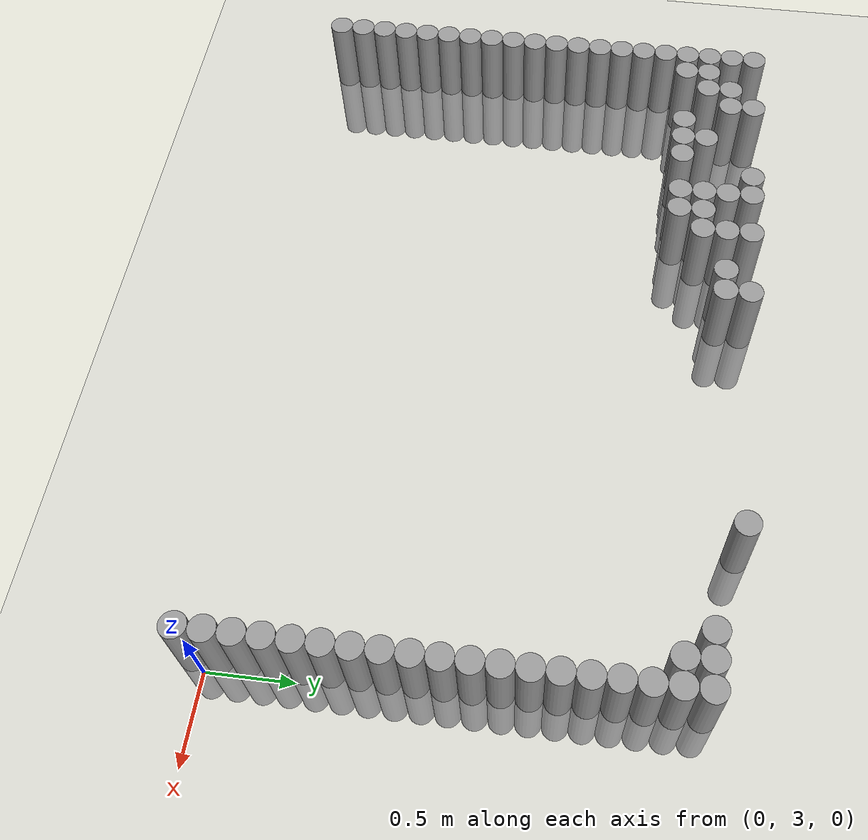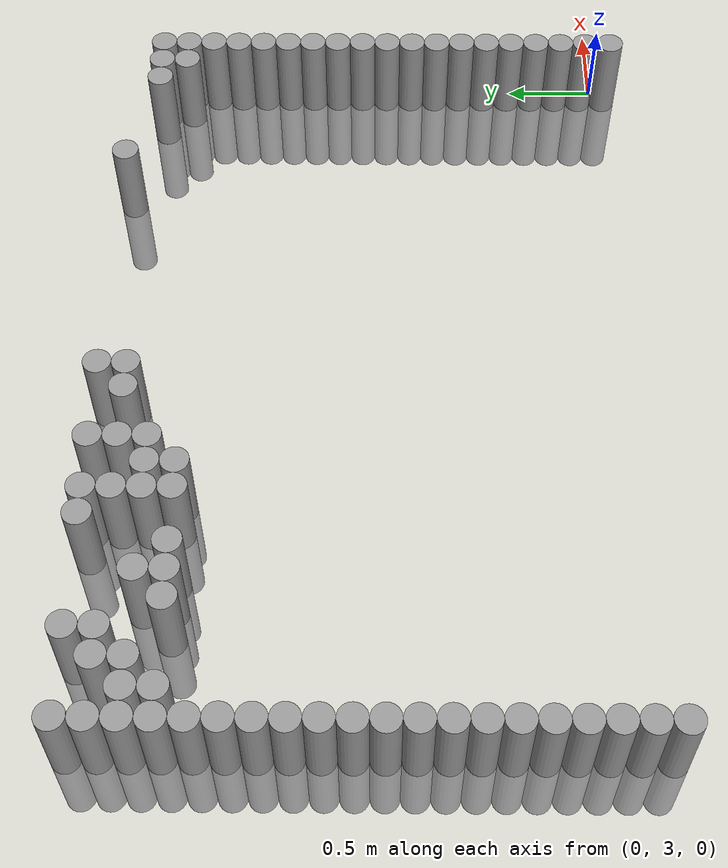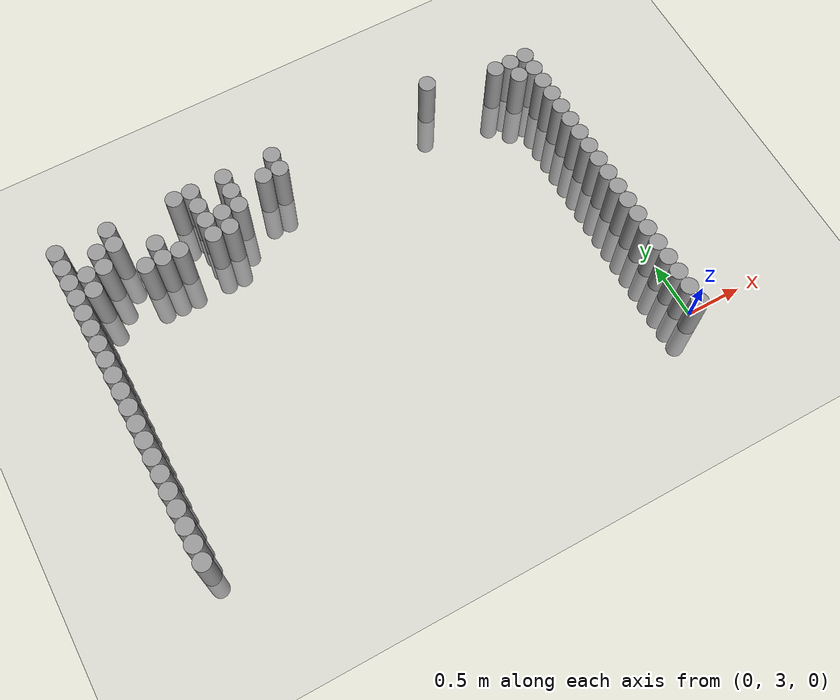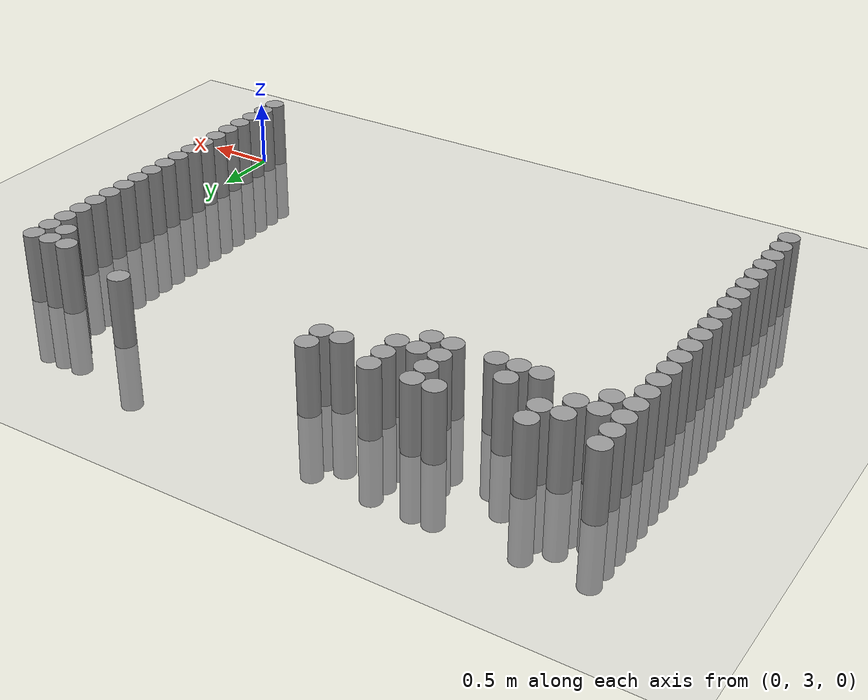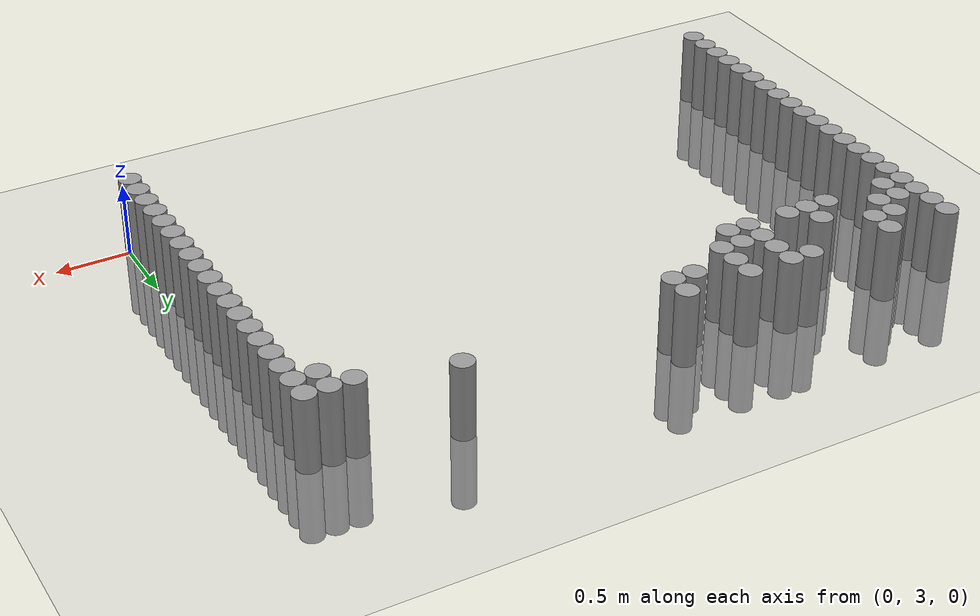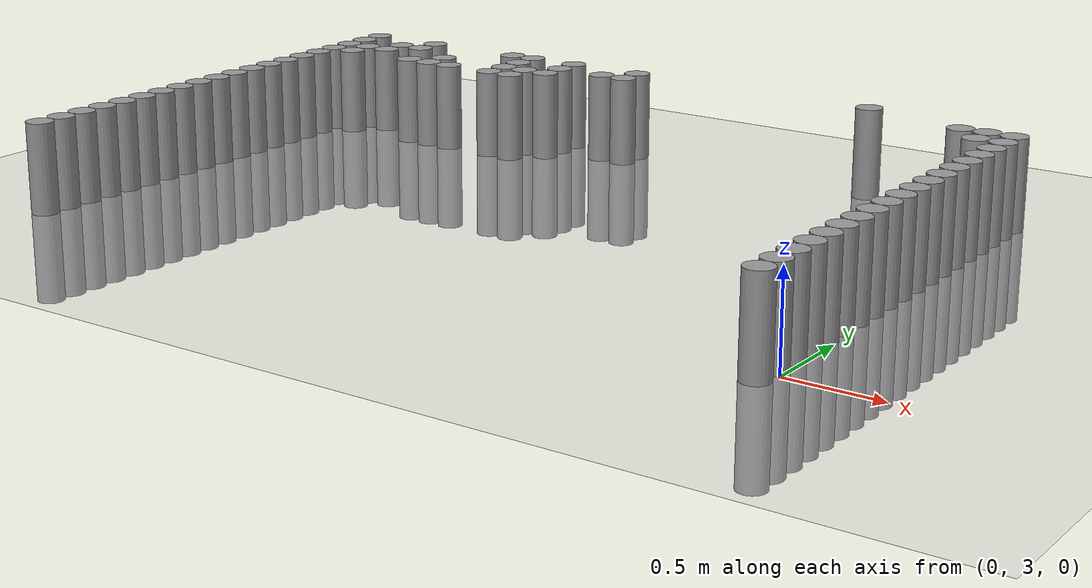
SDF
<sdf version="1.6">
 <world name="default">
  <model name="ground_plane">
   <static>1</static>
   <link name="link">
    <collision name="collision">
     <geometry><plane><normal>0 0 1</normal><size>100 100</size></plane></geometry>
     <surface><friction><ode><mu>100</mu><mu2>50</mu2></ode></friction></surface>
    </collision>
    <visual name="visual">
     <cast_shadows>0</cast_shadows>
     <geometry><plane><normal>0 0 1</normal><size>100 100</size></plane></geometry>
     <material>
      <script><uri>file://media/materials/scripts/gazebo.material</uri><name>Gazebo/Grey</name></script>
     </material>
    </visual>
   </link>
  </model>
  <model name="unit_cylinder_66">
   <pose>-0.075000 2.925000 0.000000 0.000000 0.000000 0.000000</pose>
   <link name="link">
    <inertial>
     <mass>1</mass>
     <inertia><ixx>0.145833</ixx><ixy>0</ixy><ixz>0</ixz><iyy>0.145833</iyy><iyz>0</iyz><izz>0.125</izz></inertia>
    </inertial>
    <collision name="collision">
     <geometry><cylinder><radius>0.075000</radius><length>1</length></cylinder></geometry>
    </collision>
    <visual name="visual">
     <geometry><cylinder><radius>0.075000</radius><length>1</length></cylinder></geometry>
     <material>
      <script><name>Gazebo/Grey</name><uri>file://media/materials/scripts/gazebo.material</uri></script>
     </material>
    </visual>
   </link>
  </model>
  <model name="unit_cylinder_67">
   <pose>-4.425000 2.925000 0.000000 0.000000 0.000000 0.000000</pose>
   <link name="link">
    <inertial>
     <mass>1</mass>
     <inertia><ixx>0.145833</ixx><ixy>0</ixy><ixz>0</ixz><iyy>0.145833</iyy><iyz>0</iyz><izz>0.125</izz></inertia>
    </inertial>
    <collision name="collision">
     <geometry><cylinder><radius>0.075000</radius><length>1</length></cylinder></geometry>
    </collision>
    <visual name="visual">
     <geometry><cylinder><radius>0.075000</radius><length>1</length></cylinder></geometry>
     <material>
      <script><name>Gazebo/Grey</name><uri>file://media/materials/scripts/gazebo.material</uri></script>
     </material>
    </visual>
   </link>
  </model>
  <model name="unit_cylinder_68">
   <pose>-0.075000 3.075000 0.000000 0.000000 0.000000 0.000000</pose>
   <link name="link">
    <inertial>
     <mass>1</mass>
     <inertia><ixx>0.145833</ixx><ixy>0</ixy><ixz>0</ixz><iyy>0.145833</iyy><iyz>0</iyz><izz>0.125</izz></inertia>
    </inertial>
    <collision name="collision">
     <geometry><cylinder><radius>0.075000</radius><length>1</length></cylinder></geometry>
    </collision>
    <visual name="visual">
     <geometry><cylinder><radius>0.075000</radius><length>1</length></cylinder></geometry>
     <material>
      <script><name>Gazebo/Grey</name><uri>file://media/materials/scripts/gazebo.material</uri></script>
     </material>
    </visual>
   </link>
  </model>
  <model name="unit_cylinder_69">
   <pose>-4.425000 3.075000 0.000000 0.000000 0.000000 0.000000</pose>
   <link name="link">
    <inertial>
     <mass>1</mass>
     <inertia><ixx>0.145833</ixx><ixy>0</ixy><ixz>0</ixz><iyy>0.145833</iyy><iyz>0</iyz><izz>0.125</izz></inertia>
    </inertial>
    <collision name="collision">
     <geometry><cylinder><radius>0.075000</radius><length>1</length></cylinder></geometry>
    </collision>
    <visual name="visual">
     <geometry><cylinder><radius>0.075000</radius><length>1</length></cylinder></geometry>
     <material>
      <script><name>Gazebo/Grey</name><uri>file://media/materials/scripts/gazebo.material</uri></script>
     </material>
    </visual>
   </link>
  </model>
  <model name="unit_cylinder_70">
   <pose>-0.075000 3.225000 0.000000 0.000000 0.000000 0.000000</pose>
   <link name="link">
    <inertial>
     <mass>1</mass>
     <inertia><ixx>0.145833</ixx><ixy>0</ixy><ixz>0</ixz><iyy>0.145833</iyy><iyz>0</iyz><izz>0.125</izz></inertia>
    </inertial>
    <collision name="collision">
     <geometry><cylinder><radius>0.075000</radius><length>1</length></cylinder></geometry>
    </collision>
    <visual name="visual">
     <geometry><cylinder><radius>0.075000</radius><length>1</length></cylinder></geometry>
     <material>
      <script><name>Gazebo/Grey</name><uri>file://media/materials/scripts/gazebo.material</uri></script>
     </material>
    </visual>
   </link>
  </model>
  <model name="unit_cylinder_71">
   <pose>-4.425000 3.225000 0.000000 0.000000 0.000000 0.000000</pose>
   <link name="link">
    <inertial>
     <mass>1</mass>
     <inertia><ixx>0.145833</ixx><ixy>0</ixy><ixz>0</ixz><iyy>0.145833</iyy><iyz>0</iyz><izz>0.125</izz></inertia>
    </inertial>
    <collision name="collision">
     <geometry><cylinder><radius>0.075000</radius><length>1</length></cylinder></geometry>
    </collision>
    <visual name="visual">
     <geometry><cylinder><radius>0.075000</radius><length>1</length></cylinder></geometry>
     <material>
      <script><name>Gazebo/Grey</name><uri>file://media/materials/scripts/gazebo.material</uri></script>
     </material>
    </visual>
   </link>
  </model>
  <model name="unit_cylinder_72">
   <pose>-0.075000 3.375000 0.000000 0.000000 0.000000 0.000000</pose>
   <link name="link">
    <inertial>
     <mass>1</mass>
     <inertia><ixx>0.145833</ixx><ixy>0</ixy><ixz>0</ixz><iyy>0.145833</iyy><iyz>0</iyz><izz>0.125</izz></inertia>
    </inertial>
    <collision name="collision">
     <geometry><cylinder><radius>0.075000</radius><length>1</length></cylinder></geometry>
    </collision>
    <visual name="visual">
     <geometry><cylinder><radius>0.075000</radius><length>1</length></cylinder></geometry>
     <material>
      <script><name>Gazebo/Grey</name><uri>file://media/materials/scripts/gazebo.material</uri></script>
     </material>
    </visual>
   </link>
  </model>
  <model name="unit_cylinder_73">
   <pose>-4.425000 3.375000 0.000000 0.000000 0.000000 0.000000</pose>
   <link name="link">
    <inertial>
     <mass>1</mass>
     <inertia><ixx>0.145833</ixx><ixy>0</ixy><ixz>0</ixz><iyy>0.145833</iyy><iyz>0</iyz><izz>0.125</izz></inertia>
    </inertial>
    <collision name="collision">
     <geometry><cylinder><radius>0.075000</radius><length>1</length></cylinder></geometry>
    </collision>
    <visual name="visual">
     <geometry><cylinder><radius>0.075000</radius><length>1</length></cylinder></geometry>
     <material>
      <script><name>Gazebo/Grey</name><uri>file://media/materials/scripts/gazebo.material</uri></script>
     </material>
    </visual>
   </link>
  </model>
  <model name="unit_cylinder_74">
   <pose>-0.075000 3.525000 0.000000 0.000000 0.000000 0.000000</pose>
   <link name="link">
    <inertial>
     <mass>1</mass>
     <inertia><ixx>0.145833</ixx><ixy>0</ixy><ixz>0</ixz><iyy>0.145833</iyy><iyz>0</iyz><izz>0.125</izz></inertia>
    </inertial>
    <collision name="collision">
     <geometry><cylinder><radius>0.075000</radius><length>1</length></cylinder></geometry>
    </collision>
    <visual name="visual">
     <geometry><cylinder><radius>0.075000</radius><length>1</length></cylinder></geometry>
     <material>
      <script><name>Gazebo/Grey</name><uri>file://media/materials/scripts/gazebo.material</uri></script>
     </material>
    </visual>
   </link>
  </model>
  <model name="unit_cylinder_75">
   <pose>-4.425000 3.525000 0.000000 0.000000 0.000000 0.000000</pose>
   <link name="link">
    <inertial>
     <mass>1</mass>
     <inertia><ixx>0.145833</ixx><ixy>0</ixy><ixz>0</ixz><iyy>0.145833</iyy><iyz>0</iyz><izz>0.125</izz></inertia>
    </inertial>
    <collision name="collision">
     <geometry><cylinder><radius>0.075000</radius><length>1</length></cylinder></geometry>
    </collision>
    <visual name="visual">
     <geometry><cylinder><radius>0.075000</radius><length>1</length></cylinder></geometry>
     <material>
      <script><name>Gazebo/Grey</name><uri>file://media/materials/scripts/gazebo.material</uri></script>
     </material>
    </visual>
   </link>
  </model>
  <model name="unit_cylinder_76">
   <pose>-0.075000 3.675000 0.000000 0.000000 0.000000 0.000000</pose>
   <link name="link">
    <inertial>
     <mass>1</mass>
     <inertia><ixx>0.145833</ixx><ixy>0</ixy><ixz>0</ixz><iyy>0.145833</iyy><iyz>0</iyz><izz>0.125</izz></inertia>
    </inertial>
    <collision name="collision">
     <geometry><cylinder><radius>0.075000</radius><length>1</length></cylinder></geometry>
    </collision>
    <visual name="visual">
     <geometry><cylinder><radius>0.075000</radius><length>1</length></cylinder></geometry>
     <material>
      <script><name>Gazebo/Grey</name><uri>file://media/materials/scripts/gazebo.material</uri></script>
     </material>
    </visual>
   </link>
  </model>
  <model name="unit_cylinder_77">
   <pose>-4.425000 3.675000 0.000000 0.000000 0.000000 0.000000</pose>
   <link name="link">
    <inertial>
     <mass>1</mass>
     <inertia><ixx>0.145833</ixx><ixy>0</ixy><ixz>0</ixz><iyy>0.145833</iyy><iyz>0</iyz><izz>0.125</izz></inertia>
    </inertial>
    <collision name="collision">
     <geometry><cylinder><radius>0.075000</radius><length>1</length></cylinder></geometry>
    </collision>
    <visual name="visual">
     <geometry><cylinder><radius>0.075000</radius><length>1</length></cylinder></geometry>
     <material>
      <script><name>Gazebo/Grey</name><uri>file://media/materials/scripts/gazebo.material</uri></script>
     </material>
    </visual>
   </link>
  </model>
  <model name="unit_cylinder_78">
   <pose>-0.075000 3.825000 0.000000 0.000000 0.000000 0.000000</pose>
   <link name="link">
    <inertial>
     <mass>1</mass>
     <inertia><ixx>0.145833</ixx><ixy>0</ixy><ixz>0</ixz><iyy>0.145833</iyy><iyz>0</iyz><izz>0.125</izz></inertia>
    </inertial>
    <collision name="collision">
     <geometry><cylinder><radius>0.075000</radius><length>1</length></cylinder></geometry>
    </collision>
    <visual name="visual">
     <geometry><cylinder><radius>0.075000</radius><length>1</length></cylinder></geometry>
     <material>
      <script><name>Gazebo/Grey</name><uri>file://media/materials/scripts/gazebo.material</uri></script>
     </material>
    </visual>
   </link>
  </model>
  <model name="unit_cylinder_79">
   <pose>-4.425000 3.825000 0.000000 0.000000 0.000000 0.000000</pose>
   <link name="link">
    <inertial>
     <mass>1</mass>
     <inertia><ixx>0.145833</ixx><ixy>0</ixy><ixz>0</ixz><iyy>0.145833</iyy><iyz>0</iyz><izz>0.125</izz></inertia>
    </inertial>
    <collision name="collision">
     <geometry><cylinder><radius>0.075000</radius><length>1</length></cylinder></geometry>
    </collision>
    <visual name="visual">
     <geometry><cylinder><radius>0.075000</radius><length>1</length></cylinder></geometry>
     <material>
      <script><name>Gazebo/Grey</name><uri>file://media/materials/scripts/gazebo.material</uri></script>
     </material>
    </visual>
   </link>
  </model>
  <model name="unit_cylinder_80">
   <pose>-0.075000 3.975000 0.000000 0.000000 0.000000 0.000000</pose>
   <link name="link">
    <inertial>
     <mass>1</mass>
     <inertia><ixx>0.145833</ixx><ixy>0</ixy><ixz>0</ixz><iyy>0.145833</iyy><iyz>0</iyz><izz>0.125</izz></inertia>
    </inertial>
    <collision name="collision">
     <geometry><cylinder><radius>0.075000</radius><length>1</length></cylinder></geometry>
    </collision>
    <visual name="visual">
     <geometry><cylinder><radius>0.075000</radius><length>1</length></cylinder></geometry>
     <material>
      <script><name>Gazebo/Grey</name><uri>file://media/materials/scripts/gazebo.material</uri></script>
     </material>
    </visual>
   </link>
  </model>
  <model name="unit_cylinder_81">
   <pose>-4.425000 3.975000 0.000000 0.000000 0.000000 0.000000</pose>
   <link name="link">
    <inertial>
     <mass>1</mass>
     <inertia><ixx>0.145833</ixx><ixy>0</ixy><ixz>0</ixz><iyy>0.145833</iyy><iyz>0</iyz><izz>0.125</izz></inertia>
    </inertial>
    <collision name="collision">
     <geometry><cylinder><radius>0.075000</radius><length>1</length></cylinder></geometry>
    </collision>
    <visual name="visual">
     <geometry><cylinder><radius>0.075000</radius><length>1</length></cylinder></geometry>
     <material>
      <script><name>Gazebo/Grey</name><uri>file://media/materials/scripts/gazebo.material</uri></script>
     </material>
    </visual>
   </link>
  </model>
  <model name="unit_cylinder_82">
   <pose>-0.075000 4.125000 0.000000 0.000000 0.000000 0.000000</pose>
   <link name="link">
    <inertial>
     <mass>1</mass>
     <inertia><ixx>0.145833</ixx><ixy>0</ixy><ixz>0</ixz><iyy>0.145833</iyy><iyz>0</iyz><izz>0.125</izz></inertia>
    </inertial>
    <collision name="collision">
     <geometry><cylinder><radius>0.075000</radius><length>1</length></cylinder></geometry>
    </collision>
    <visual name="visual">
     <geometry><cylinder><radius>0.075000</radius><length>1</length></cylinder></geometry>
     <material>
      <script><name>Gazebo/Grey</name><uri>file://media/materials/scripts/gazebo.material</uri></script>
     </material>
    </visual>
   </link>
  </model>
  <model name="unit_cylinder_83">
   <pose>-4.425000 4.125000 0.000000 0.000000 0.000000 0.000000</pose>
   <link name="link">
    <inertial>
     <mass>1</mass>
     <inertia><ixx>0.145833</ixx><ixy>0</ixy><ixz>0</ixz><iyy>0.145833</iyy><iyz>0</iyz><izz>0.125</izz></inertia>
    </inertial>
    <collision name="collision">
     <geometry><cylinder><radius>0.075000</radius><length>1</length></cylinder></geometry>
    </collision>
    <visual name="visual">
     <geometry><cylinder><radius>0.075000</radius><length>1</length></cylinder></geometry>
     <material>
      <script><name>Gazebo/Grey</name><uri>file://media/materials/scripts/gazebo.material</uri></script>
     </material>
    </visual>
   </link>
  </model>
  <model name="unit_cylinder_84">
   <pose>-0.075000 4.275000 0.000000 0.000000 0.000000 0.000000</pose>
   <link name="link">
    <inertial>
     <mass>1</mass>
     <inertia><ixx>0.145833</ixx><ixy>0</ixy><ixz>0</ixz><iyy>0.145833</iyy><iyz>0</iyz><izz>0.125</izz></inertia>
    </inertial>
    <collision name="collision">
     <geometry><cylinder><radius>0.075000</radius><length>1</length></cylinder></geometry>
    </collision>
    <visual name="visual">
     <geometry><cylinder><radius>0.075000</radius><length>1</length></cylinder></geometry>
     <material>
      <script><name>Gazebo/Grey</name><uri>file://media/materials/scripts/gazebo.material</uri></script>
     </material>
    </visual>
   </link>
  </model>
  <model name="unit_cylinder_85">
   <pose>-4.425000 4.275000 0.000000 0.000000 0.000000 0.000000</pose>
   <link name="link">
    <inertial>
     <mass>1</mass>
     <inertia><ixx>0.145833</ixx><ixy>0</ixy><ixz>0</ixz><iyy>0.145833</iyy><iyz>0</iyz><izz>0.125</izz></inertia>
    </inertial>
    <collision name="collision">
     <geometry><cylinder><radius>0.075000</radius><length>1</length></cylinder></geometry>
    </collision>
    <visual name="visual">
     <geometry><cylinder><radius>0.075000</radius><length>1</length></cylinder></geometry>
     <material>
      <script><name>Gazebo/Grey</name><uri>file://media/materials/scripts/gazebo.material</uri></script>
     </material>
    </visual>
   </link>
  </model>
  <model name="unit_cylinder_86">
   <pose>-0.075000 4.425000 0.000000 0.000000 0.000000 0.000000</pose>
   <link name="link">
    <inertial>
     <mass>1</mass>
     <inertia><ixx>0.145833</ixx><ixy>0</ixy><ixz>0</ixz><iyy>0.145833</iyy><iyz>0</iyz><izz>0.125</izz></inertia>
    </inertial>
    <collision name="collision">
     <geometry><cylinder><radius>0.075000</radius><length>1</length></cylinder></geometry>
    </collision>
    <visual name="visual">
     <geometry><cylinder><radius>0.075000</radius><length>1</length></cylinder></geometry>
     <material>
      <script><name>Gazebo/Grey</name><uri>file://media/materials/scripts/gazebo.material</uri></script>
     </material>
    </visual>
   </link>
  </model>
  <model name="unit_cylinder_87">
   <pose>-4.425000 4.425000 0.000000 0.000000 0.000000 0.000000</pose>
   <link name="link">
    <inertial>
     <mass>1</mass>
     <inertia><ixx>0.145833</ixx><ixy>0</ixy><ixz>0</ixz><iyy>0.145833</iyy><iyz>0</iyz><izz>0.125</izz></inertia>
    </inertial>
    <collision name="collision">
     <geometry><cylinder><radius>0.075000</radius><length>1</length></cylinder></geometry>
    </collision>
    <visual name="visual">
     <geometry><cylinder><radius>0.075000</radius><length>1</length></cylinder></geometry>
     <material>
      <script><name>Gazebo/Grey</name><uri>file://media/materials/scripts/gazebo.material</uri></script>
     </material>
    </visual>
   </link>
  </model>
  <model name="unit_cylinder_88">
   <pose>-0.075000 4.575000 0.000000 0.000000 0.000000 0.000000</pose>
   <link name="link">
    <inertial>
     <mass>1</mass>
     <inertia><ixx>0.145833</ixx><ixy>0</ixy><ixz>0</ixz><iyy>0.145833</iyy><iyz>0</iyz><izz>0.125</izz></inertia>
    </inertial>
    <collision name="collision">
     <geometry><cylinder><radius>0.075000</radius><length>1</length></cylinder></geometry>
    </collision>
    <visual name="visual">
     <geometry><cylinder><radius>0.075000</radius><length>1</length></cylinder></geometry>
     <material>
      <script><name>Gazebo/Grey</name><uri>file://media/materials/scripts/gazebo.material</uri></script>
     </material>
    </visual>
   </link>
  </model>
  <model name="unit_cylinder_89">
   <pose>-4.425000 4.575000 0.000000 0.000000 0.000000 0.000000</pose>
   <link name="link">
    <inertial>
     <mass>1</mass>
     <inertia><ixx>0.145833</ixx><ixy>0</ixy><ixz>0</ixz><iyy>0.145833</iyy><iyz>0</iyz><izz>0.125</izz></inertia>
    </inertial>
    <collision name="collision">
     <geometry><cylinder><radius>0.075000</radius><length>1</length></cylinder></geometry>
    </collision>
    <visual name="visual">
     <geometry><cylinder><radius>0.075000</radius><length>1</length></cylinder></geometry>
     <material>
      <script><name>Gazebo/Grey</name><uri>file://media/materials/scripts/gazebo.material</uri></script>
     </material>
    </visual>
   </link>
  </model>
  <model name="unit_cylinder_90">
   <pose>-0.075000 4.725000 0.000000 0.000000 0.000000 0.000000</pose>
   <link name="link">
    <inertial>
     <mass>1</mass>
     <inertia><ixx>0.145833</ixx><ixy>0</ixy><ixz>0</ixz><iyy>0.145833</iyy><iyz>0</iyz><izz>0.125</izz></inertia>
    </inertial>
    <collision name="collision">
     <geometry><cylinder><radius>0.075000</radius><length>1</length></cylinder></geometry>
    </collision>
    <visual name="visual">
     <geometry><cylinder><radius>0.075000</radius><length>1</length></cylinder></geometry>
     <material>
      <script><name>Gazebo/Grey</name><uri>file://media/materials/scripts/gazebo.material</uri></script>
     </material>
    </visual>
   </link>
  </model>
  <model name="unit_cylinder_91">
   <pose>-4.425000 4.725000 0.000000 0.000000 0.000000 0.000000</pose>
   <link name="link">
    <inertial>
     <mass>1</mass>
     <inertia><ixx>0.145833</ixx><ixy>0</ixy><ixz>0</ixz><iyy>0.145833</iyy><iyz>0</iyz><izz>0.125</izz></inertia>
    </inertial>
    <collision name="collision">
     <geometry><cylinder><radius>0.075000</radius><length>1</length></cylinder></geometry>
    </collision>
    <visual name="visual">
     <geometry><cylinder><radius>0.075000</radius><length>1</length></cylinder></geometry>
     <material>
      <script><name>Gazebo/Grey</name><uri>file://media/materials/scripts/gazebo.material</uri></script>
     </material>
    </visual>
   </link>
  </model>
  <model name="unit_cylinder_92">
   <pose>-0.075000 4.875000 0.000000 0.000000 0.000000 0.000000</pose>
   <link name="link">
    <inertial>
     <mass>1</mass>
     <inertia><ixx>0.145833</ixx><ixy>0</ixy><ixz>0</ixz><iyy>0.145833</iyy><iyz>0</iyz><izz>0.125</izz></inertia>
    </inertial>
    <collision name="collision">
     <geometry><cylinder><radius>0.075000</radius><length>1</length></cylinder></geometry>
    </collision>
    <visual name="visual">
     <geometry><cylinder><radius>0.075000</radius><length>1</length></cylinder></geometry>
     <material>
      <script><name>Gazebo/Grey</name><uri>file://media/materials/scripts/gazebo.material</uri></script>
     </material>
    </visual>
   </link>
  </model>
  <model name="unit_cylinder_93">
   <pose>-4.425000 4.875000 0.000000 0.000000 0.000000 0.000000</pose>
   <link name="link">
    <inertial>
     <mass>1</mass>
     <inertia><ixx>0.145833</ixx><ixy>0</ixy><ixz>0</ixz><iyy>0.145833</iyy><iyz>0</iyz><izz>0.125</izz></inertia>
    </inertial>
    <collision name="collision">
     <geometry><cylinder><radius>0.075000</radius><length>1</length></cylinder></geometry>
    </collision>
    <visual name="visual">
     <geometry><cylinder><radius>0.075000</radius><length>1</length></cylinder></geometry>
     <material>
      <script><name>Gazebo/Grey</name><uri>file://media/materials/scripts/gazebo.material</uri></script>
     </material>
    </visual>
   </link>
  </model>
  <model name="unit_cylinder_94">
   <pose>-0.075000 5.025000 0.000000 0.000000 0.000000 0.000000</pose>
   <link name="link">
    <inertial>
     <mass>1</mass>
     <inertia><ixx>0.145833</ixx><ixy>0</ixy><ixz>0</ixz><iyy>0.145833</iyy><iyz>0</iyz><izz>0.125</izz></inertia>
    </inertial>
    <collision name="collision">
     <geometry><cylinder><radius>0.075000</radius><length>1</length></cylinder></geometry>
    </collision>
    <visual name="visual">
     <geometry><cylinder><radius>0.075000</radius><length>1</length></cylinder></geometry>
     <material>
      <script><name>Gazebo/Grey</name><uri>file://media/materials/scripts/gazebo.material</uri></script>
     </material>
    </visual>
   </link>
  </model>
  <model name="unit_cylinder_95">
   <pose>-4.425000 5.025000 0.000000 0.000000 0.000000 0.000000</pose>
   <link name="link">
    <inertial>
     <mass>1</mass>
     <inertia><ixx>0.145833</ixx><ixy>0</ixy><ixz>0</ixz><iyy>0.145833</iyy><iyz>0</iyz><izz>0.125</izz></inertia>
    </inertial>
    <collision name="collision">
     <geometry><cylinder><radius>0.075000</radius><length>1</length></cylinder></geometry>
    </collision>
    <visual name="visual">
     <geometry><cylinder><radius>0.075000</radius><length>1</length></cylinder></geometry>
     <material>
      <script><name>Gazebo/Grey</name><uri>file://media/materials/scripts/gazebo.material</uri></script>
     </material>
    </visual>
   </link>
  </model>
  <model name="unit_cylinder_96">
   <pose>-4.425000 5.175000 0.000000 0.000000 0.000000 0.000000</pose>
   <link name="link">
    <inertial>
     <mass>1</mass>
     <inertia><ixx>0.145833</ixx><ixy>0</ixy><ixz>0</ixz><iyy>0.145833</iyy><iyz>0</iyz><izz>0.125</izz></inertia>
    </inertial>
    <collision name="collision">
     <geometry><cylinder><radius>0.075000</radius><length>1</length></cylinder></geometry>
    </collision>
    <visual name="visual">
     <geometry><cylinder><radius>0.075000</radius><length>1</length></cylinder></geometry>
     <material>
      <script><name>Gazebo/Grey</name><uri>file://media/materials/scripts/gazebo.material</uri></script>
     </material>
    </visual>
   </link>
  </model>
  <model name="unit_cylinder_97">
   <pose>-4.425000 5.325000 0.000000 0.000000 0.000000 0.000000</pose>
   <link name="link">
    <inertial>
     <mass>1</mass>
     <inertia><ixx>0.145833</ixx><ixy>0</ixy><ixz>0</ixz><iyy>0.145833</iyy><iyz>0</iyz><izz>0.125</izz></inertia>
    </inertial>
    <collision name="collision">
     <geometry><cylinder><radius>0.075000</radius><length>1</length></cylinder></geometry>
    </collision>
    <visual name="visual">
     <geometry><cylinder><radius>0.075000</radius><length>1</length></cylinder></geometry>
     <material>
      <script><name>Gazebo/Grey</name><uri>file://media/materials/scripts/gazebo.material</uri></script>
     </material>
    </visual>
   </link>
  </model>
  <model name="unit_cylinder_98">
   <pose>-4.425000 5.475000 0.000000 0.000000 0.000000 0.000000</pose>
   <link name="link">
    <inertial>
     <mass>1</mass>
     <inertia><ixx>0.145833</ixx><ixy>0</ixy><ixz>0</ixz><iyy>0.145833</iyy><iyz>0</iyz><izz>0.125</izz></inertia>
    </inertial>
    <collision name="collision">
     <geometry><cylinder><radius>0.075000</radius><length>1</length></cylinder></geometry>
    </collision>
    <visual name="visual">
     <geometry><cylinder><radius>0.075000</radius><length>1</length></cylinder></geometry>
     <material>
      <script><name>Gazebo/Grey</name><uri>file://media/materials/scripts/gazebo.material</uri></script>
     </material>
    </visual>
   </link>
  </model>
  <model name="unit_cylinder_99">
   <pose>-4.425000 5.625000 0.000000 0.000000 0.000000 0.000000</pose>
   <link name="link">
    <inertial>
     <mass>1</mass>
     <inertia><ixx>0.145833</ixx><ixy>0</ixy><ixz>0</ixz><iyy>0.145833</iyy><iyz>0</iyz><izz>0.125</izz></inertia>
    </inertial>
    <collision name="collision">
     <geometry><cylinder><radius>0.075000</radius><length>1</length></cylinder></geometry>
    </collision>
    <visual name="visual">
     <geometry><cylinder><radius>0.075000</radius><length>1</length></cylinder></geometry>
     <material>
      <script><name>Gazebo/Grey</name><uri>file://media/materials/scripts/gazebo.material</uri></script>
     </material>
    </visual>
   </link>
  </model>
  <model name="unit_cylinder_100">
   <pose>-4.425000 5.775000 0.000000 0.000000 0.000000 0.000000</pose>
   <link name="link">
    <inertial>
     <mass>1</mass>
     <inertia><ixx>0.145833</ixx><ixy>0</ixy><ixz>0</ixz><iyy>0.145833</iyy><iyz>0</iyz><izz>0.125</izz></inertia>
    </inertial>
    <collision name="collision">
     <geometry><cylinder><radius>0.075000</radius><length>1</length></cylinder></geometry>
    </collision>
    <visual name="visual">
     <geometry><cylinder><radius>0.075000</radius><length>1</length></cylinder></geometry>
     <material>
      <script><name>Gazebo/Grey</name><uri>file://media/materials/scripts/gazebo.material</uri></script>
     </material>
    </visual>
   </link>
  </model>
  <model name="unit_cylinder_126">
   <pose>-4.275000 5.325000 0.000000 0.000000 0.000000 0.000000</pose>
   <link name="link">
    <inertial>
     <mass>1</mass>
     <inertia><ixx>0.145833</ixx><ixy>0</ixy><ixz>0</ixz><iyy>0.145833</iyy><iyz>0</iyz><izz>0.125</izz></inertia>
    </inertial>
    <collision name="collision">
     <geometry><cylinder><radius>0.075000</radius><length>1</length></cylinder></geometry>
    </collision>
    <visual name="visual">
     <geometry><cylinder><radius>0.075000</radius><length>1</length></cylinder></geometry>
     <material>
      <script><name>Gazebo/Grey</name><uri>file://media/materials/scripts/gazebo.material</uri></script>
     </material>
    </visual>
   </link>
  </model>
  <model name="unit_cylinder_127">
   <pose>-4.275000 5.475000 0.000000 0.000000 0.000000 0.000000</pose>
   <link name="link">
    <inertial>
     <mass>1</mass>
     <inertia><ixx>0.145833</ixx><ixy>0</ixy><ixz>0</ixz><iyy>0.145833</iyy><iyz>0</iyz><izz>0.125</izz></inertia>
    </inertial>
    <collision name="collision">
     <geometry><cylinder><radius>0.075000</radius><length>1</length></cylinder></geometry>
    </collision>
    <visual name="visual">
     <geometry><cylinder><radius>0.075000</radius><length>1</length></cylinder></geometry>
     <material>
      <script><name>Gazebo/Grey</name><uri>file://media/materials/scripts/gazebo.material</uri></script>
     </material>
    </visual>
   </link>
  </model>
  <model name="unit_cylinder_145">
   <pose>-4.125000 5.475000 0.000000 0.000000 0.000000 0.000000</pose>
   <link name="link">
    <inertial>
     <mass>1</mass>
     <inertia><ixx>0.145833</ixx><ixy>0</ixy><ixz>0</ixz><iyy>0.145833</iyy><iyz>0</iyz><izz>0.125</izz></inertia>
    </inertial>
    <collision name="collision">
     <geometry><cylinder><radius>0.075000</radius><length>1</length></cylinder></geometry>
    </collision>
    <visual name="visual">
     <geometry><cylinder><radius>0.075000</radius><length>1</length></cylinder></geometry>
     <material>
      <script><name>Gazebo/Grey</name><uri>file://media/materials/scripts/gazebo.material</uri></script>
     </material>
    </visual>
   </link>
  </model>
  <model name="unit_cylinder_146">
   <pose>-4.125000 5.625000 0.000000 0.000000 0.000000 0.000000</pose>
   <link name="link">
    <inertial>
     <mass>1</mass>
     <inertia><ixx>0.145833</ixx><ixy>0</ixy><ixz>0</ixz><iyy>0.145833</iyy><iyz>0</iyz><izz>0.125</izz></inertia>
    </inertial>
    <collision name="collision">
     <geometry><cylinder><radius>0.075000</radius><length>1</length></cylinder></geometry>
    </collision>
    <visual name="visual">
     <geometry><cylinder><radius>0.075000</radius><length>1</length></cylinder></geometry>
     <material>
      <script><name>Gazebo/Grey</name><uri>file://media/materials/scripts/gazebo.material</uri></script>
     </material>
    </visual>
   </link>
  </model>
  <model name="unit_cylinder_159">
   <pose>-3.975000 5.625000 0.000000 0.000000 0.000000 0.000000</pose>
   <link name="link">
    <inertial>
     <mass>1</mass>
     <inertia><ixx>0.145833</ixx><ixy>0</ixy><ixz>0</ixz><iyy>0.145833</iyy><iyz>0</iyz><izz>0.125</izz></inertia>
    </inertial>
    <collision name="collision">
     <geometry><cylinder><radius>0.075000</radius><length>1</length></cylinder></geometry>
    </collision>
    <visual name="visual">
     <geometry><cylinder><radius>0.075000</radius><length>1</length></cylinder></geometry>
     <material>
      <script><name>Gazebo/Grey</name><uri>file://media/materials/scripts/gazebo.material</uri></script>
     </material>
    </visual>
   </link>
  </model>
  <model name="unit_cylinder_160">
   <pose>-3.975000 5.775000 0.000000 0.000000 0.000000 0.000000</pose>
   <link name="link">
    <inertial>
     <mass>1</mass>
     <inertia><ixx>0.145833</ixx><ixy>0</ixy><ixz>0</ixz><iyy>0.145833</iyy><iyz>0</iyz><izz>0.125</izz></inertia>
    </inertial>
    <collision name="collision">
     <geometry><cylinder><radius>0.075000</radius><length>1</length></cylinder></geometry>
    </collision>
    <visual name="visual">
     <geometry><cylinder><radius>0.075000</radius><length>1</length></cylinder></geometry>
     <material>
      <script><name>Gazebo/Grey</name><uri>file://media/materials/scripts/gazebo.material</uri></script>
     </material>
    </visual>
   </link>
  </model>
  <model name="unit_cylinder_165">
   <pose>-3.825000 5.325000 0.000000 0.000000 0.000000 0.000000</pose>
   <link name="link">
    <inertial>
     <mass>1</mass>
     <inertia><ixx>0.145833</ixx><ixy>0</ixy><ixz>0</ixz><iyy>0.145833</iyy><iyz>0</iyz><izz>0.125</izz></inertia>
    </inertial>
    <collision name="collision">
     <geometry><cylinder><radius>0.075000</radius><length>1</length></cylinder></geometry>
    </collision>
    <visual name="visual">
     <geometry><cylinder><radius>0.075000</radius><length>1</length></cylinder></geometry>
     <material>
      <script><name>Gazebo/Grey</name><uri>file://media/materials/scripts/gazebo.material</uri></script>
     </material>
    </visual>
   </link>
  </model>
  <model name="unit_cylinder_170">
   <pose>-3.675000 5.325000 0.000000 0.000000 0.000000 0.000000</pose>
   <link name="link">
    <inertial>
     <mass>1</mass>
     <inertia><ixx>0.145833</ixx><ixy>0</ixy><ixz>0</ixz><iyy>0.145833</iyy><iyz>0</iyz><izz>0.125</izz></inertia>
    </inertial>
    <collision name="collision">
     <geometry><cylinder><radius>0.075000</radius><length>1</length></cylinder></geometry>
    </collision>
    <visual name="visual">
     <geometry><cylinder><radius>0.075000</radius><length>1</length></cylinder></geometry>
     <material>
      <script><name>Gazebo/Grey</name><uri>file://media/materials/scripts/gazebo.material</uri></script>
     </material>
    </visual>
   </link>
  </model>
  <model name="unit_cylinder_171">
   <pose>-3.675000 5.475000 0.000000 0.000000 0.000000 0.000000</pose>
   <link name="link">
    <inertial>
     <mass>1</mass>
     <inertia><ixx>0.145833</ixx><ixy>0</ixy><ixz>0</ixz><iyy>0.145833</iyy><iyz>0</iyz><izz>0.125</izz></inertia>
    </inertial>
    <collision name="collision">
     <geometry><cylinder><radius>0.075000</radius><length>1</length></cylinder></geometry>
    </collision>
    <visual name="visual">
     <geometry><cylinder><radius>0.075000</radius><length>1</length></cylinder></geometry>
     <material>
      <script><name>Gazebo/Grey</name><uri>file://media/materials/scripts/gazebo.material</uri></script>
     </material>
    </visual>
   </link>
  </model>
  <model name="unit_cylinder_176">
   <pose>-3.525000 5.325000 0.000000 0.000000 0.000000 0.000000</pose>
   <link name="link">
    <inertial>
     <mass>1</mass>
     <inertia><ixx>0.145833</ixx><ixy>0</ixy><ixz>0</ixz><iyy>0.145833</iyy><iyz>0</iyz><izz>0.125</izz></inertia>
    </inertial>
    <collision name="collision">
     <geometry><cylinder><radius>0.075000</radius><length>1</length></cylinder></geometry>
    </collision>
    <visual name="visual">
     <geometry><cylinder><radius>0.075000</radius><length>1</length></cylinder></geometry>
     <material>
      <script><name>Gazebo/Grey</name><uri>file://media/materials/scripts/gazebo.material</uri></script>
     </material>
    </visual>
   </link>
  </model>
  <model name="unit_cylinder_182">
   <pose>-3.375000 5.775000 0.000000 0.000000 0.000000 0.000000</pose>
   <link name="link">
    <inertial>
     <mass>1</mass>
     <inertia><ixx>0.145833</ixx><ixy>0</ixy><ixz>0</ixz><iyy>0.145833</iyy><iyz>0</iyz><izz>0.125</izz></inertia>
    </inertial>
    <collision name="collision">
     <geometry><cylinder><radius>0.075000</radius><length>1</length></cylinder></geometry>
    </collision>
    <visual name="visual">
     <geometry><cylinder><radius>0.075000</radius><length>1</length></cylinder></geometry>
     <material>
      <script><name>Gazebo/Grey</name><uri>file://media/materials/scripts/gazebo.material</uri></script>
     </material>
    </visual>
   </link>
  </model>
  <model name="unit_cylinder_186">
   <pose>-3.225000 5.325000 0.000000 0.000000 0.000000 0.000000</pose>
   <link name="link">
    <inertial>
     <mass>1</mass>
     <inertia><ixx>0.145833</ixx><ixy>0</ixy><ixz>0</ixz><iyy>0.145833</iyy><iyz>0</iyz><izz>0.125</izz></inertia>
    </inertial>
    <collision name="collision">
     <geometry><cylinder><radius>0.075000</radius><length>1</length></cylinder></geometry>
    </collision>
    <visual name="visual">
     <geometry><cylinder><radius>0.075000</radius><length>1</length></cylinder></geometry>
     <material>
      <script><name>Gazebo/Grey</name><uri>file://media/materials/scripts/gazebo.material</uri></script>
     </material>
    </visual>
   </link>
  </model>
  <model name="unit_cylinder_187">
   <pose>-3.225000 5.475000 0.000000 0.000000 0.000000 0.000000</pose>
   <link name="link">
    <inertial>
     <mass>1</mass>
     <inertia><ixx>0.145833</ixx><ixy>0</ixy><ixz>0</ixz><iyy>0.145833</iyy><iyz>0</iyz><izz>0.125</izz></inertia>
    </inertial>
    <collision name="collision">
     <geometry><cylinder><radius>0.075000</radius><length>1</length></cylinder></geometry>
    </collision>
    <visual name="visual">
     <geometry><cylinder><radius>0.075000</radius><length>1</length></cylinder></geometry>
     <material>
      <script><name>Gazebo/Grey</name><uri>file://media/materials/scripts/gazebo.material</uri></script>
     </material>
    </visual>
   </link>
  </model>
  <model name="unit_cylinder_188">
   <pose>-3.225000 5.625000 0.000000 0.000000 0.000000 0.000000</pose>
   <link name="link">
    <inertial>
     <mass>1</mass>
     <inertia><ixx>0.145833</ixx><ixy>0</ixy><ixz>0</ixz><iyy>0.145833</iyy><iyz>0</iyz><izz>0.125</izz></inertia>
    </inertial>
    <collision name="collision">
     <geometry><cylinder><radius>0.075000</radius><length>1</length></cylinder></geometry>
    </collision>
    <visual name="visual">
     <geometry><cylinder><radius>0.075000</radius><length>1</length></cylinder></geometry>
     <material>
      <script><name>Gazebo/Grey</name><uri>file://media/materials/scripts/gazebo.material</uri></script>
     </material>
    </visual>
   </link>
  </model>
  <model name="unit_cylinder_189">
   <pose>-3.225000 5.775000 0.000000 0.000000 0.000000 0.000000</pose>
   <link name="link">
    <inertial>
     <mass>1</mass>
     <inertia><ixx>0.145833</ixx><ixy>0</ixy><ixz>0</ixz><iyy>0.145833</iyy><iyz>0</iyz><izz>0.125</izz></inertia>
    </inertial>
    <collision name="collision">
     <geometry><cylinder><radius>0.075000</radius><length>1</length></cylinder></geometry>
    </collision>
    <visual name="visual">
     <geometry><cylinder><radius>0.075000</radius><length>1</length></cylinder></geometry>
     <material>
      <script><name>Gazebo/Grey</name><uri>file://media/materials/scripts/gazebo.material</uri></script>
     </material>
    </visual>
   </link>
  </model>
  <model name="unit_cylinder_193">
   <pose>-3.075000 5.325000 0.000000 0.000000 0.000000 0.000000</pose>
   <link name="link">
    <inertial>
     <mass>1</mass>
     <inertia><ixx>0.145833</ixx><ixy>0</ixy><ixz>0</ixz><iyy>0.145833</iyy><iyz>0</iyz><izz>0.125</izz></inertia>
    </inertial>
    <collision name="collision">
     <geometry><cylinder><radius>0.075000</radius><length>1</length></cylinder></geometry>
    </collision>
    <visual name="visual">
     <geometry><cylinder><radius>0.075000</radius><length>1</length></cylinder></geometry>
     <material>
      <script><name>Gazebo/Grey</name><uri>file://media/materials/scripts/gazebo.material</uri></script>
     </material>
    </visual>
   </link>
  </model>
  <model name="unit_cylinder_194">
   <pose>-3.075000 5.475000 0.000000 0.000000 0.000000 0.000000</pose>
   <link name="link">
    <inertial>
     <mass>1</mass>
     <inertia><ixx>0.145833</ixx><ixy>0</ixy><ixz>0</ixz><iyy>0.145833</iyy><iyz>0</iyz><izz>0.125</izz></inertia>
    </inertial>
    <collision name="collision">
     <geometry><cylinder><radius>0.075000</radius><length>1</length></cylinder></geometry>
    </collision>
    <visual name="visual">
     <geometry><cylinder><radius>0.075000</radius><length>1</length></cylinder></geometry>
     <material>
      <script><name>Gazebo/Grey</name><uri>file://media/materials/scripts/gazebo.material</uri></script>
     </material>
    </visual>
   </link>
  </model>
  <model name="unit_cylinder_198">
   <pose>-2.925000 5.475000 0.000000 0.000000 0.000000 0.000000</pose>
   <link name="link">
    <inertial>
     <mass>1</mass>
     <inertia><ixx>0.145833</ixx><ixy>0</ixy><ixz>0</ixz><iyy>0.145833</iyy><iyz>0</iyz><izz>0.125</izz></inertia>
    </inertial>
    <collision name="collision">
     <geometry><cylinder><radius>0.075000</radius><length>1</length></cylinder></geometry>
    </collision>
    <visual name="visual">
     <geometry><cylinder><radius>0.075000</radius><length>1</length></cylinder></geometry>
     <material>
      <script><name>Gazebo/Grey</name><uri>file://media/materials/scripts/gazebo.material</uri></script>
     </material>
    </visual>
   </link>
  </model>
  <model name="unit_cylinder_199">
   <pose>-2.925000 5.625000 0.000000 0.000000 0.000000 0.000000</pose>
   <link name="link">
    <inertial>
     <mass>1</mass>
     <inertia><ixx>0.145833</ixx><ixy>0</ixy><ixz>0</ixz><iyy>0.145833</iyy><iyz>0</iyz><izz>0.125</izz></inertia>
    </inertial>
    <collision name="collision">
     <geometry><cylinder><radius>0.075000</radius><length>1</length></cylinder></geometry>
    </collision>
    <visual name="visual">
     <geometry><cylinder><radius>0.075000</radius><length>1</length></cylinder></geometry>
     <material>
      <script><name>Gazebo/Grey</name><uri>file://media/materials/scripts/gazebo.material</uri></script>
     </material>
    </visual>
   </link>
  </model>
  <model name="unit_cylinder_200">
   <pose>-2.925000 5.775000 0.000000 0.000000 0.000000 0.000000</pose>
   <link name="link">
    <inertial>
     <mass>1</mass>
     <inertia><ixx>0.145833</ixx><ixy>0</ixy><ixz>0</ixz><iyy>0.145833</iyy><iyz>0</iyz><izz>0.125</izz></inertia>
    </inertial>
    <collision name="collision">
     <geometry><cylinder><radius>0.075000</radius><length>1</length></cylinder></geometry>
    </collision>
    <visual name="visual">
     <geometry><cylinder><radius>0.075000</radius><length>1</length></cylinder></geometry>
     <material>
      <script><name>Gazebo/Grey</name><uri>file://media/materials/scripts/gazebo.material</uri></script>
     </material>
    </visual>
   </link>
  </model>
  <model name="unit_cylinder_213">
   <pose>-2.625000 5.625000 0.000000 0.000000 0.000000 0.000000</pose>
   <link name="link">
    <inertial>
     <mass>1</mass>
     <inertia><ixx>0.145833</ixx><ixy>0</ixy><ixz>0</ixz><iyy>0.145833</iyy><iyz>0</iyz><izz>0.125</izz></inertia>
    </inertial>
    <collision name="collision">
     <geometry><cylinder><radius>0.075000</radius><length>1</length></cylinder></geometry>
    </collision>
    <visual name="visual">
     <geometry><cylinder><radius>0.075000</radius><length>1</length></cylinder></geometry>
     <material>
      <script><name>Gazebo/Grey</name><uri>file://media/materials/scripts/gazebo.material</uri></script>
     </material>
    </visual>
   </link>
  </model>
  <model name="unit_cylinder_220">
   <pose>-2.475000 5.625000 0.000000 0.000000 0.000000 0.000000</pose>
   <link name="link">
    <inertial>
     <mass>1</mass>
     <inertia><ixx>0.145833</ixx><ixy>0</ixy><ixz>0</ixz><iyy>0.145833</iyy><iyz>0</iyz><izz>0.125</izz></inertia>
    </inertial>
    <collision name="collision">
     <geometry><cylinder><radius>0.075000</radius><length>1</length></cylinder></geometry>
    </collision>
    <visual name="visual">
     <geometry><cylinder><radius>0.075000</radius><length>1</length></cylinder></geometry>
     <material>
      <script><name>Gazebo/Grey</name><uri>file://media/materials/scripts/gazebo.material</uri></script>
     </material>
    </visual>
   </link>
  </model>
  <model name="unit_cylinder_221">
   <pose>-2.475000 5.775000 0.000000 0.000000 0.000000 0.000000</pose>
   <link name="link">
    <inertial>
     <mass>1</mass>
     <inertia><ixx>0.145833</ixx><ixy>0</ixy><ixz>0</ixz><iyy>0.145833</iyy><iyz>0</iyz><izz>0.125</izz></inertia>
    </inertial>
    <collision name="collision">
     <geometry><cylinder><radius>0.075000</radius><length>1</length></cylinder></geometry>
    </collision>
    <visual name="visual">
     <geometry><cylinder><radius>0.075000</radius><length>1</length></cylinder></geometry>
     <material>
      <script><name>Gazebo/Grey</name><uri>file://media/materials/scripts/gazebo.material</uri></script>
     </material>
    </visual>
   </link>
  </model>
  <model name="unit_cylinder_253">
   <pose>-0.975000 5.775000 0.000000 0.000000 0.000000 0.000000</pose>
   <link name="link">
    <inertial>
     <mass>1</mass>
     <inertia><ixx>0.145833</ixx><ixy>0</ixy><ixz>0</ixz><iyy>0.145833</iyy><iyz>0</iyz><izz>0.125</izz></inertia>
    </inertial>
    <collision name="collision">
     <geometry><cylinder><radius>0.075000</radius><length>1</length></cylinder></geometry>
    </collision>
    <visual name="visual">
     <geometry><cylinder><radius>0.075000</radius><length>1</length></cylinder></geometry>
     <material>
      <script><name>Gazebo/Grey</name><uri>file://media/materials/scripts/gazebo.material</uri></script>
     </material>
    </visual>
   </link>
  </model>
  <model name="unit_cylinder_273">
   <pose>-0.375000 5.625000 0.000000 0.000000 0.000000 0.000000</pose>
   <link name="link">
    <inertial>
     <mass>1</mass>
     <inertia><ixx>0.145833</ixx><ixy>0</ixy><ixz>0</ixz><iyy>0.145833</iyy><iyz>0</iyz><izz>0.125</izz></inertia>
    </inertial>
    <collision name="collision">
     <geometry><cylinder><radius>0.075000</radius><length>1</length></cylinder></geometry>
    </collision>
    <visual name="visual">
     <geometry><cylinder><radius>0.075000</radius><length>1</length></cylinder></geometry>
     <material>
      <script><name>Gazebo/Grey</name><uri>file://media/materials/scripts/gazebo.material</uri></script>
     </material>
    </visual>
   </link>
  </model>
  <model name="unit_cylinder_286">
   <pose>-0.225000 5.475000 0.000000 0.000000 0.000000 0.000000</pose>
   <link name="link">
    <inertial>
     <mass>1</mass>
     <inertia><ixx>0.145833</ixx><ixy>0</ixy><ixz>0</ixz><iyy>0.145833</iyy><iyz>0</iyz><izz>0.125</izz></inertia>
    </inertial>
    <collision name="collision">
     <geometry><cylinder><radius>0.075000</radius><length>1</length></cylinder></geometry>
    </collision>
    <visual name="visual">
     <geometry><cylinder><radius>0.075000</radius><length>1</length></cylinder></geometry>
     <material>
      <script><name>Gazebo/Grey</name><uri>file://media/materials/scripts/gazebo.material</uri></script>
     </material>
    </visual>
   </link>
  </model>
  <model name="unit_cylinder_287">
   <pose>-0.225000 5.625000 0.000000 0.000000 0.000000 0.000000</pose>
   <link name="link">
    <inertial>
     <mass>1</mass>
     <inertia><ixx>0.145833</ixx><ixy>0</ixy><ixz>0</ixz><iyy>0.145833</iyy><iyz>0</iyz><izz>0.125</izz></inertia>
    </inertial>
    <collision name="collision">
     <geometry><cylinder><radius>0.075000</radius><length>1</length></cylinder></geometry>
    </collision>
    <visual name="visual">
     <geometry><cylinder><radius>0.075000</radius><length>1</length></cylinder></geometry>
     <material>
      <script><name>Gazebo/Grey</name><uri>file://media/materials/scripts/gazebo.material</uri></script>
     </material>
    </visual>
   </link>
  </model>
  <model name="unit_cylinder_299">
   <pose>-0.075000 5.175000 0.000000 0.000000 0.000000 0.000000</pose>
   <link name="link">
    <inertial>
     <mass>1</mass>
     <inertia><ixx>0.145833</ixx><ixy>0</ixy><ixz>0</ixz><iyy>0.145833</iyy><iyz>0</iyz><izz>0.125</izz></inertia>
    </inertial>
    <collision name="collision">
     <geometry><cylinder><radius>0.075000</radius><length>1</length></cylinder></geometry>
    </collision>
    <visual name="visual">
     <geometry><cylinder><radius>0.075000</radius><length>1</length></cylinder></geometry>
     <material>
      <script><name>Gazebo/Grey</name><uri>file://media/materials/scripts/gazebo.material</uri></script>
     </material>
    </visual>
   </link>
  </model>
  <model name="unit_cylinder_300">
   <pose>-0.075000 5.325000 0.000000 0.000000 0.000000 0.000000</pose>
   <link name="link">
    <inertial>
     <mass>1</mass>
     <inertia><ixx>0.145833</ixx><ixy>0</ixy><ixz>0</ixz><iyy>0.145833</iyy><iyz>0</iyz><izz>0.125</izz></inertia>
    </inertial>
    <collision name="collision">
     <geometry><cylinder><radius>0.075000</radius><length>1</length></cylinder></geometry>
    </collision>
    <visual name="visual">
     <geometry><cylinder><radius>0.075000</radius><length>1</length></cylinder></geometry>
     <material>
      <script><name>Gazebo/Grey</name><uri>file://media/materials/scripts/gazebo.material</uri></script>
     </material>
    </visual>
   </link>
  </model>
  <model name="unit_cylinder_301">
   <pose>-0.075000 5.475000 0.000000 0.000000 0.000000 0.000000</pose>
   <link name="link">
    <inertial>
     <mass>1</mass>
     <inertia><ixx>0.145833</ixx><ixy>0</ixy><ixz>0</ixz><iyy>0.145833</iyy><iyz>0</iyz><izz>0.125</izz></inertia>
    </inertial>
    <collision name="collision">
     <geometry><cylinder><radius>0.075000</radius><length>1</length></cylinder></geometry>
    </collision>
    <visual name="visual">
     <geometry><cylinder><radius>0.075000</radius><length>1</length></cylinder></geometry>
     <material>
      <script><name>Gazebo/Grey</name><uri>file://media/materials/scripts/gazebo.material</uri></script>
     </material>
    </visual>
   </link>
  </model>
  <model name="unit_cylinder_302">
   <pose>-0.075000 5.625000 0.000000 0.000000 0.000000 0.000000</pose>
   <link name="link">
    <inertial>
     <mass>1</mass>
     <inertia><ixx>0.145833</ixx><ixy>0</ixy><ixz>0</ixz><iyy>0.145833</iyy><iyz>0</iyz><izz>0.125</izz></inertia>
    </inertial>
    <collision name="collision">
     <geometry><cylinder><radius>0.075000</radius><length>1</length></cylinder></geometry>
    </collision>
    <visual name="visual">
     <geometry><cylinder><radius>0.075000</radius><length>1</length></cylinder></geometry>
     <material>
      <script><name>Gazebo/Grey</name><uri>file://media/materials/scripts/gazebo.material</uri></script>
     </material>
    </visual>
   </link>
  </model>
 </world>
</sdf>
